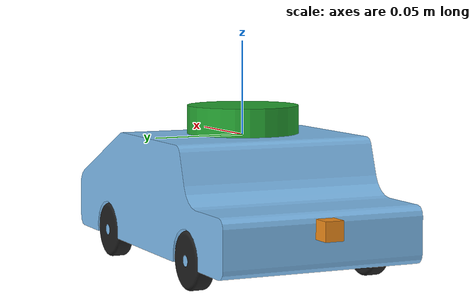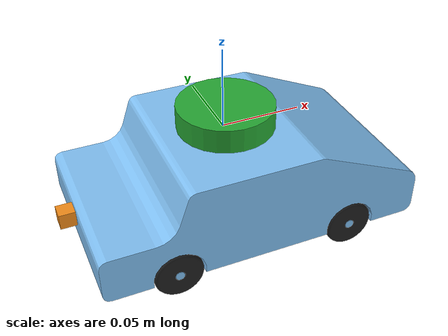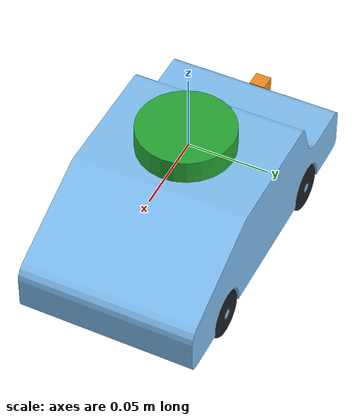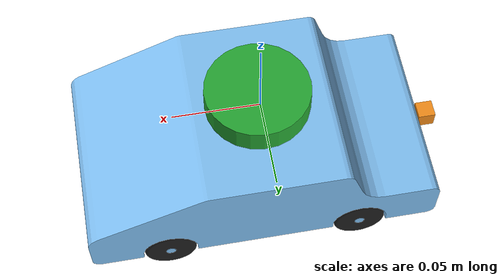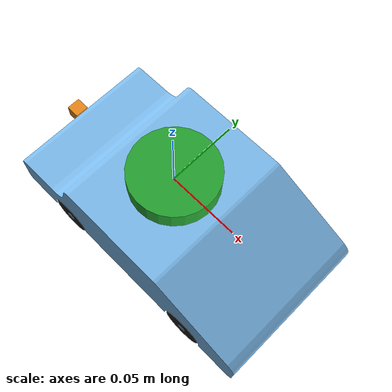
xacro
<?xml version="1.0" ?>
<robot name="bfl_14" xmlns:xacro="http://ros.org/wiki/xacro">
<xacro:include filename="$(find dharmendra_model)/gazebo/bfl_14/bfl_14.gazebo"/>

    <link name="camera_optical_link"/>

    <joint name="camera_optical_joint" type="fixed">
    <parent link="camera_link"/>
    <child link="camera_optical_link"/>
    <origin xyz="-0.08272  0.00202  0.09503" rpy="-1.5708 0      -1.5708"/>
    <limit lower="0" upper="0" effort="0" velocity="0"/>
    </joint>

  <joint name="back_left_joint" type="revolute">
    <parent link="base_link"/>
    <child link="back_left_link"/>
    <origin xyz="-0.04966  0.05451 -0.05656" rpy="0 0 0"/>
    <axis xyz="0 -1  0"/>
    <limit lower="-1e+16" upper="1e+16" effort="0.0" velocity="0.0"/>
  </joint>
  <joint name="back_right_joint" type="revolute">
    <parent link="base_link"/>
    <child link="back_right_link"/>
    <origin xyz="-0.04966 -0.05446 -0.05656" rpy="0 0 0"/>
    <axis xyz="0 1 0"/>
    <limit lower="-1e+16" upper="1e+16" effort="0.0" velocity="0.0"/>
  </joint>
  <joint name="lidar_joint" type="fixed">
    <parent link="base_link"/>
    <child link="lidar_link"/>
    <origin xyz="0.00144 -0.0008   0.00821" rpy="-3.0000e-05 -8.0000e-05 -3.0727e-01"/>
    <axis xyz="0 0 0"/>
    <limit lower="0" upper="0" effort="0" velocity="0"/>
  </joint>
  <joint name="camera_joint" type="fixed">
    <parent link="base_link"/>
    <child link="camera_link"/>
    <origin xyz="-0.09996  0.00052 -0.03749" rpy="0 0  3.14159"/>
    <axis xyz="0 0 0"/>
    <limit lower="0" upper="0" effort="0" velocity="0"/>
  </joint>
  <joint name="front_left_joint" type="revolute">
    <parent link="base_link"/>
    <child link="front_left_link"/>
    <origin xyz="0.06153  0.05449 -0.05656" rpy="0 0 0"/>
    <axis xyz="0 -1  0"/>
    <limit lower="-1e+16" upper="1e+16" effort="0.0" velocity="0.0"/>
  </joint>
  <joint name="front_right_joint" type="revolute">
    <parent link="base_link"/>
    <child link="front_right_link"/>
    <origin xyz="0.06153 -0.0545  -0.05656" rpy="0 0 0"/>
    <axis xyz="0 1 0"/>
    <limit lower="-1e+16" upper="1e+16" effort="0.0" velocity="0.0"/>
  </joint>
  <link name="base_link">
    <inertial>
      <mass value="1.01774"/>
      <origin xyz="0.0091   0      -0.03372" rpy="0 0 0"/>
      <inertia ixx="0.00123679" ixy="4.78648e-20" ixz="-3.11721e-05" iyy="0.00293732" iyz="1.98612e-20" izz="0.00365409"/>
    </inertial>
    <collision>
      <origin xyz="0 0 0" rpy="0 0 0"/>
      <geometry>
        <mesh filename="package://full_tesla_truck_urdf/meshes/base_link.STL" scale="1 1 1"/>
      </geometry>
    </collision>
    <visual>
      <origin xyz="0 0 0" rpy="0 0 0"/>
      <geometry>
        <mesh filename="package://full_tesla_truck_urdf/meshes/base_link.STL" scale="1 1 1"/>
      </geometry>
    </visual>
  </link>
  <link name="back_left_link">
    <inertial>
      <mass value="0.0066289"/>
      <origin xyz="0    -0.005  0" rpy="0 0 0"/>
      <inertia ixx="4.3359e-07" ixy="1.1029e-24" ixz="2.93e-23" iyy="7.6063e-07" iyz="-1.7922e-24" izz="4.3359e-07"/>
    </inertial>
    <collision>
      <origin xyz="0 0 0" rpy="0 0 0"/>
      <geometry>
        <mesh filename="package://full_tesla_truck_urdf/meshes/back_left_link.STL" scale="1 1 1"/>
      </geometry>
    </collision>
    <visual>
      <origin xyz="0 0 0" rpy="0 0 0"/>
      <geometry>
        <mesh filename="package://full_tesla_truck_urdf/meshes/back_left_link.STL" scale="1 1 1"/>
      </geometry>
    </visual>
  </link>
  <link name="back_right_link">
    <inertial>
      <mass value="0.0066289"/>
      <origin xyz="0    0.005 0" rpy="0 0 0"/>
      <inertia ixx="4.3359e-07" ixy="-3.108e-24" ixz="-2.4808e-23" iyy="7.6063e-07" iyz="-1.6326e-24" izz="4.3359e-07"/>
    </inertial>
    <collision>
      <origin xyz="0 0 0" rpy="0 0 0"/>
      <geometry>
        <mesh filename="package://full_tesla_truck_urdf/meshes/back_right_link.STL" scale="1 1 1"/>
      </geometry>
    </collision>
    <visual>
      <origin xyz="0 0 0" rpy="0 0 0"/>
      <geometry>
        <mesh filename="package://full_tesla_truck_urdf/meshes/back_right_link.STL" scale="1 1 1"/>
      </geometry>
    </visual>
  </link>
  <link name="front_left_link">
    <inertial>
      <mass value="0.0066289"/>
      <origin xyz="0    -0.005  0" rpy="0 0 0"/>
      <inertia ixx="4.3359e-07" ixy="-2.7573e-25" ixz="5.076e-23" iyy="7.6063e-07" iyz="4.1359e-24" izz="4.3359e-07"/>
    </inertial>
    <collision>
      <origin xyz="0 0 0" rpy="0 0 0"/>
      <geometry>
        <mesh filename="package://full_tesla_truck_urdf/meshes/front_left_link.STL" scale="1 1 1"/>
      </geometry>
    </collision>
    <visual>
      <origin xyz="0 0 0" rpy="0 0 0"/>
      <geometry>
        <mesh filename="package://full_tesla_truck_urdf/meshes/front_left_link.STL" scale="1 1 1"/>
      </geometry>
    </visual>
  </link>
  <link name="front_right_link">
    <inertial>
      <mass value="0.0066289"/>
      <origin xyz="0    0.005 0" rpy="0 0 0"/>
      <inertia ixx="4.3359e-07" ixy="-2.8345e-24" ixz="5.0785e-24" iyy="7.6063e-07" iyz="-1.8072e-24" izz="4.3359e-07"/>
    </inertial>
    <collision>
      <origin xyz="0 0 0" rpy="0 0 0"/>
      <geometry>
        <mesh filename="package://full_tesla_truck_urdf/meshes/front_right_link.STL" scale="1 1 1"/>
      </geometry>
    </collision>
    <visual>
      <origin xyz="0 0 0" rpy="0 0 0"/>
      <geometry>
        <mesh filename="package://full_tesla_truck_urdf/meshes/front_right_link.STL" scale="1 1 1"/>
      </geometry>
    </visual>
  </link>
  <link name="lidar_link">
    <inertial>
      <mass value="1"/>
      <origin xyz="0 0 0" rpy="0 0 0"/>
      <inertia ixx="0.145833" ixy="0" ixz="0" iyy="0.145833" iyz="0" izz="0.125"/>
    </inertial>
    <collision>
      <origin xyz="0 0 0" rpy="0 0 0"/>
      <geometry>
        <cylinder radius="0.03" length="0.015"/>
      </geometry>
    </collision>
    <visual>
      <origin xyz="0 0 0" rpy="0 0 0"/>
      <geometry>
        <cylinder radius="0.03" length="0.015"/>
      </geometry>
    </visual>
  </link>
  <link name="camera_link">
    <inertial>
      <mass value="1"/>
      <origin xyz="0 0 0" rpy="0 0 0"/>
      <inertia ixx="0.166667" ixy="0" ixz="0" iyy="0.166667" iyz="0" izz="0.166667"/>
    </inertial>
    <collision>
      <origin xyz="0 0 0" rpy="0 0 0"/>
      <geometry>
        <box size="0.01 0.01 0.01"/>
      </geometry>
    </collision>
    <visual>
      <origin xyz="0 0 0" rpy="0 0 0"/>
      <geometry>
        <box size="0.01 0.01 0.01"/>
      </geometry>
    </visual>
  </link>
</robot>
